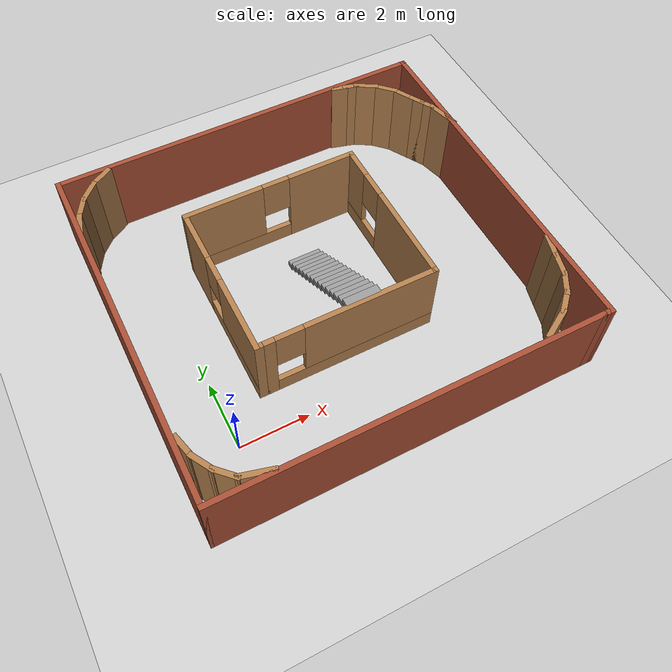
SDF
<sdf version="1.7">
 <world name="default">
  <light name="sun" type="directional">
   <pose>0 0 10 0 -0 0</pose>
   <diffuse>0.8 0.8 0.8 1</diffuse>
   <specular>0.2 0.2 0.2 1</specular>
   <attenuation>
    <range>1000</range>
    <constant>0.9</constant>
    <linear>0.01</linear>
    <quadratic>0.001</quadratic>
   </attenuation>
   <direction>-0.5 0.1 -0.9</direction>
   <spot><inner_angle>0</inner_angle><outer_angle>0</outer_angle><falloff>0</falloff></spot>
  </light>
  <model name="ground_plane">
   <static>1</static>
   <link name="link">
    <collision name="collision">
     <geometry><plane><normal>0 0 1</normal><size>100 100</size></plane></geometry>
     <surface><friction><ode><mu>100</mu><mu2>50</mu2></ode></friction></surface>
    </collision>
    <visual name="visual">
     <cast_shadows>0</cast_shadows>
     <geometry><plane><normal>0 0 1</normal><size>100 100</size></plane></geometry>
     <material>
      <script><uri>file://media/materials/scripts/gazebo.material</uri><name>Gazebo/Grey</name></script>
     </material>
    </visual>
   </link>
  </model>
  <gravity>0 0 -9.8</gravity>
  <magnetic_field>6e-06 2.3e-05 -4.2e-05</magnetic_field>
  <atmosphere type="adiabatic"/>
  <physics type="ode">
   <max_step_size>0.001</max_step_size>
   <real_time_factor>1</real_time_factor>
   <real_time_update_rate>1000</real_time_update_rate>
  </physics>
  <scene><ambient>0.4 0.4 0.4 1</ambient><background>0.7 0.7 0.7 1</background><shadows>1</shadows></scene>
  <spherical_coordinates>
   <surface_model>EARTH_WGS84</surface_model>
   <latitude_deg>0</latitude_deg>
   <longitude_deg>0</longitude_deg>
   <elevation>0</elevation>
   <heading_deg>0</heading_deg>
  </spherical_coordinates>
  <model name="Untitled">
   <model name="fastrlap2">
    <pose>3e-06 5e-06 0 0 -0 0</pose>
    <link name="Stairs_0">
     <visual name="Stairs_0_Visual_0">
      <pose>0.192844 1.34287 0.083333 0 -0 0</pose>
      <geometry><box><size>1 0.233333 0.166667</size></box></geometry>
      <material>
       <script><uri>file://media/materials/scripts/gazebo.material</uri><name>Gazebo/Grey</name></script>
       <ambient>1 1 1 1</ambient>
      </material>
      <meta><layer>0</layer></meta>
     </visual>
     <collision name="Stairs_0_Collision_0">
      <geometry><box><size>1 0.233333 0.166667</size></box></geometry>
      <pose>0.192844 1.34287 0.083333 0 -0 0</pose>
     </collision>
     <visual name="Stairs_0_Visual_1">
      <pose>0.192844 1.10954 0.25 0 -0 0</pose>
      <geometry><box><size>1 0.233333 0.166667</size></box></geometry>
      <material>
       <script><uri>file://media/materials/scripts/gazebo.material</uri><name>Gazebo/Grey</name></script>
       <ambient>1 1 1 1</ambient>
      </material>
      <meta><layer>0</layer></meta>
     </visual>
     <collision name="Stairs_0_Collision_1">
      <geometry><box><size>1 0.233333 0.166667</size></box></geometry>
      <pose>0.192844 1.10954 0.25 0 -0 0</pose>
     </collision>
     <visual name="Stairs_0_Visual_2">
      <pose>0.192844 0.876204 0.416667 0 -0 0</pose>
      <geometry><box><size>1 0.233333 0.166667</size></box></geometry>
      <material>
       <script><uri>file://media/materials/scripts/gazebo.material</uri><name>Gazebo/Grey</name></script>
       <ambient>1 1 1 1</ambient>
      </material>
      <meta><layer>0</layer></meta>
     </visual>
     <collision name="Stairs_0_Collision_2">
      <geometry><box><size>1 0.233333 0.166667</size></box></geometry>
      <pose>0.192844 0.876204 0.416667 0 -0 0</pose>
     </collision>
     <visual name="Stairs_0_Visual_3">
      <pose>0.192844 0.642871 0.583333 0 -0 0</pose>
      <geometry><box><size>1 0.233333 0.166667</size></box></geometry>
      <material>
       <script><uri>file://media/materials/scripts/gazebo.material</uri><name>Gazebo/Grey</name></script>
       <ambient>1 1 1 1</ambient>
      </material>
      <meta><layer>0</layer></meta>
     </visual>
     <collision name="Stairs_0_Collision_3">
      <geometry><box><size>1 0.233333 0.166667</size></box></geometry>
      <pose>0.192844 0.642871 0.583333 0 -0 0</pose>
     </collision>
     <visual name="Stairs_0_Visual_4">
      <pose>0.192844 0.409537 0.75 0 -0 0</pose>
      <geometry><box><size>1 0.233333 0.166667</size></box></geometry>
      <material>
       <script><uri>file://media/materials/scripts/gazebo.material</uri><name>Gazebo/Grey</name></script>
       <ambient>1 1 1 1</ambient>
      </material>
      <meta><layer>0</layer></meta>
     </visual>
     <collision name="Stairs_0_Collision_4">
      <geometry><box><size>1 0.233333 0.166667</size></box></geometry>
      <pose>0.192844 0.409537 0.75 0 -0 0</pose>
     </collision>
     <visual name="Stairs_0_Visual_5">
      <pose>0.192844 0.176204 0.916667 0 -0 0</pose>
      <geometry><box><size>1 0.233333 0.166667</size></box></geometry>
      <material>
       <script><uri>file://media/materials/scripts/gazebo.material</uri><name>Gazebo/Grey</name></script>
       <ambient>1 1 1 1</ambient>
      </material>
      <meta><layer>0</layer></meta>
     </visual>
     <collision name="Stairs_0_Collision_5">
      <geometry><box><size>1 0.233333 0.166667</size></box></geometry>
      <pose>0.192844 0.176204 0.916667 0 -0 0</pose>
     </collision>
     <visual name="Stairs_0_Visual_6">
      <pose>0.192844 -0.057129 1.08333 0 -0 0</pose>
      <geometry><box><size>1 0.233333 0.166667</size></box></geometry>
      <material>
       <script><uri>file://media/materials/scripts/gazebo.material</uri><name>Gazebo/Grey</name></script>
       <ambient>1 1 1 1</ambient>
      </material>
      <meta><layer>0</layer></meta>
     </visual>
     <collision name="Stairs_0_Collision_6">
      <geometry><box><size>1 0.233333 0.166667</size></box></geometry>
      <pose>0.192844 -0.057129 1.08333 0 -0 0</pose>
     </collision>
     <visual name="Stairs_0_Visual_7">
      <pose>0.192844 -0.290463 1.25 0 -0 0</pose>
      <geometry><box><size>1 0.233333 0.166667</size></box></geometry>
      <material>
       <script><uri>file://media/materials/scripts/gazebo.material</uri><name>Gazebo/Grey</name></script>
       <ambient>1 1 1 1</ambient>
      </material>
      <meta><layer>0</layer></meta>
     </visual>
     <collision name="Stairs_0_Collision_7">
      <geometry><box><size>1 0.233333 0.166667</size></box></geometry>
      <pose>0.192844 -0.290463 1.25 0 -0 0</pose>
     </collision>
     <visual name="Stairs_0_Visual_8">
      <pose>0.192844 -0.523796 1.41667 0 -0 0</pose>
      <geometry><box><size>1 0.233333 0.166667</size></box></geometry>
      <material>
       <script><uri>file://media/materials/scripts/gazebo.material</uri><name>Gazebo/Grey</name></script>
       <ambient>1 1 1 1</ambient>
      </material>
      <meta><layer>0</layer></meta>
     </visual>
     <collision name="Stairs_0_Collision_8">
      <geometry><box><size>1 0.233333 0.166667</size></box></geometry>
      <pose>0.192844 -0.523796 1.41667 0 -0 0</pose>
     </collision>
     <visual name="Stairs_0_Visual_9">
      <pose>0.192844 -0.757129 1.58333 0 -0 0</pose>
      <geometry><box><size>1 0.233333 0.166667</size></box></geometry>
      <material>
       <script><uri>file://media/materials/scripts/gazebo.material</uri><name>Gazebo/Grey</name></script>
       <ambient>1 1 1 1</ambient>
      </material>
      <meta><layer>0</layer></meta>
     </visual>
     <collision name="Stairs_0_Collision_9">
      <geometry><box><size>1 0.233333 0.166667</size></box></geometry>
      <pose>0.192844 -0.757129 1.58333 0 -0 0</pose>
     </collision>
     <visual name="Stairs_0_Visual_10">
      <pose>0.192844 -0.990463 1.75 0 -0 0</pose>
      <geometry><box><size>1 0.233333 0.166667</size></box></geometry>
      <material>
       <script><uri>file://media/materials/scripts/gazebo.material</uri><name>Gazebo/Grey</name></script>
       <ambient>1 1 1 1</ambient>
      </material>
      <meta><layer>0</layer></meta>
     </visual>
     <collision name="Stairs_0_Collision_10">
      <geometry><box><size>1 0.233333 0.166667</size></box></geometry>
      <pose>0.192844 -0.990463 1.75 0 -0 0</pose>
     </collision>
     <visual name="Stairs_0_Visual_11">
      <pose>0.192844 -1.2238 1.91667 0 -0 0</pose>
      <geometry><box><size>1 0.233333 0.166667</size></box></geometry>
      <material>
       <script><uri>file://media/materials/scripts/gazebo.material</uri><name>Gazebo/Grey</name></script>
       <ambient>1 1 1 1</ambient>
      </material>
      <meta><layer>0</layer></meta>
     </visual>
     <collision name="Stairs_0_Collision_11">
      <geometry><box><size>1 0.233333 0.166667</size></box></geometry>
      <pose>0.192844 -1.2238 1.91667 0 -0 0</pose>
     </collision>
     <visual name="Stairs_0_Visual_12">
      <pose>0.192844 -1.45713 2.08333 0 -0 0</pose>
      <geometry><box><size>1 0.233333 0.166667</size></box></geometry>
      <material>
       <script><uri>file://media/materials/scripts/gazebo.material</uri><name>Gazebo/Grey</name></script>
       <ambient>1 1 1 1</ambient>
      </material>
      <meta><layer>0</layer></meta>
     </visual>
     <collision name="Stairs_0_Collision_12">
      <geometry><box><size>1 0.233333 0.166667</size></box></geometry>
      <pose>0.192844 -1.45713 2.08333 0 -0 0</pose>
     </collision>
     <visual name="Stairs_0_Visual_13">
      <pose>0.192844 -1.69046 2.25 0 -0 0</pose>
      <geometry><box><size>1 0.233333 0.166667</size></box></geometry>
      <material>
       <script><uri>file://media/materials/scripts/gazebo.material</uri><name>Gazebo/Grey</name></script>
       <ambient>1 1 1 1</ambient>
      </material>
      <meta><layer>0</layer></meta>
     </visual>
     <collision name="Stairs_0_Collision_13">
      <geometry><box><size>1 0.233333 0.166667</size></box></geometry>
      <pose>0.192844 -1.69046 2.25 0 -0 0</pose>
     </collision>
     <visual name="Stairs_0_Visual_14">
      <pose>0.192844 -1.9238 2.41667 0 -0 0</pose>
      <geometry><box><size>1 0.233333 0.166667</size></box></geometry>
      <material>
       <script><uri>file://media/materials/scripts/gazebo.material</uri><name>Gazebo/Grey</name></script>
       <ambient>1 1 1 1</ambient>
      </material>
      <meta><layer>0</layer></meta>
     </visual>
     <collision name="Stairs_0_Collision_14">
      <geometry><box><size>1 0.233333 0.166667</size></box></geometry>
      <pose>0.192844 -1.9238 2.41667 0 -0 0</pose>
     </collision>
    </link>
    <link name="Wall_1">
     <collision name="Wall_1_Collision">
      <geometry><box><size>11 0.15 2.5</size></box></geometry>
      <pose>0 0 1.25 0 -0 0</pose>
     </collision>
     <visual name="Wall_1_Visual">
      <pose>0 0 1.25 0 -0 0</pose>
      <geometry><box><size>11 0.15 2.5</size></box></geometry>
      <material>
       <script><uri>file://media/materials/scripts/gazebo.material</uri><name>Gazebo/Bricks</name></script>
       <ambient>1 1 1 1</ambient>
      </material>
      <meta><layer>0</layer></meta>
     </visual>
     <pose>-0.125 -5.175 0 0 -0 0</pose>
    </link>
    <link name="Wall_12">
     <collision name="Wall_12_Collision">
      <geometry><box><size>10.5 0.15 2.5</size></box></geometry>
      <pose>0 0 1.25 0 -0 0</pose>
     </collision>
     <visual name="Wall_12_Visual">
      <pose>0 0 1.25 0 -0 0</pose>
      <geometry><box><size>10.5 0.15 2.5</size></box></geometry>
      <material>
       <script><uri>file://media/materials/scripts/gazebo.material</uri><name>Gazebo/Bricks</name></script>
       <ambient>1 1 1 1</ambient>
      </material>
      <meta><layer>0</layer></meta>
     </visual>
     <pose>-5.55 0 0 0 -0 1.5708</pose>
    </link>
    <link name="Wall_13">
     <collision name="Wall_13_Collision">
      <geometry><box><size>11.25 0.15 2.5</size></box></geometry>
      <pose>0 0 1.25 0 -0 0</pose>
     </collision>
     <visual name="Wall_13_Visual">
      <pose>0 0 1.25 0 -0 0</pose>
      <geometry><box><size>11.25 0.15 2.5</size></box></geometry>
      <material>
       <script><uri>file://media/materials/scripts/gazebo.material</uri><name>Gazebo/Bricks</name></script>
       <ambient>1 1 1 1</ambient>
      </material>
      <meta><layer>0</layer></meta>
     </visual>
     <pose>-0 5.175 0 0 -0 0</pose>
    </link>
    <link name="Wall_14">
     <collision name="Wall_14_Collision">
      <geometry><box><size>10.5 0.15 2.5</size></box></geometry>
      <pose>0 0 1.25 0 -0 0</pose>
     </collision>
     <visual name="Wall_14_Visual">
      <pose>0 0 1.25 0 -0 0</pose>
      <geometry><box><size>10.5 0.15 2.5</size></box></geometry>
      <material>
       <script><uri>file://media/materials/scripts/gazebo.material</uri><name>Gazebo/Bricks</name></script>
       <ambient>1 1 1 1</ambient>
      </material>
      <meta><layer>0</layer></meta>
     </visual>
     <pose>5.55 0 0 0 -0 -1.5708</pose>
    </link>
    <link name="Wall_15">
     <collision name="Wall_15_Collision">
      <geometry><box><size>0.4 0.15 2.5</size></box></geometry>
      <pose>0 0 1.25 0 -0 0</pose>
     </collision>
     <visual name="Wall_15_Visual">
      <pose>0 0 1.25 0 -0 0</pose>
      <geometry><box><size>0.4 0.15 2.5</size></box></geometry>
      <material>
       <script><uri>file://media/materials/scripts/gazebo.material</uri><name>Gazebo/Bricks</name></script>
       <ambient>1 1 1 1</ambient>
      </material>
      <meta><layer>0</layer></meta>
     </visual>
     <pose>5.425 -5.175 0 0 -0 -3.14159</pose>
    </link>
    <link name="Wall_4">
     <pose>-0.154642 -2.08647 0 0 -0 0</pose>
     <visual name="Wall_4_Visual_0">
      <pose>-2.34027 0 1.25 0 -0 0</pose>
      <geometry><box><size>0.31947 0.15 2.5</size></box></geometry>
      <material>
       <script><uri>file://media/materials/scripts/gazebo.material</uri><name>Gazebo/Wood</name></script>
       <ambient>1 1 1 1</ambient>
      </material>
      <meta><layer>0</layer></meta>
     </visual>
     <collision name="Wall_4_Collision_0">
      <geometry><box><size>0.31947 0.15 2.5</size></box></geometry>
      <pose>-2.34027 0 1.25 0 -0 0</pose>
     </collision>
     <visual name="Wall_4_Visual_1">
      <pose>0.159735 0 0.25 0 -0 0</pose>
      <geometry><box><size>4.68053 0.15 0.5</size></box></geometry>
      <material>
       <script><uri>file://media/materials/scripts/gazebo.material</uri><name>Gazebo/Wood</name></script>
       <ambient>1 1 1 1</ambient>
      </material>
      <meta><layer>0</layer></meta>
     </visual>
     <collision name="Wall_4_Collision_1">
      <geometry><box><size>4.68053 0.15 0.5</size></box></geometry>
      <pose>0.159735 0 0.25 0 -0 0</pose>
     </collision>
     <visual name="Wall_4_Visual_2">
      <pose>0.559735 0 1.5 0 -0 0</pose>
      <geometry><box><size>3.88053 0.15 2</size></box></geometry>
      <material>
       <script><uri>file://media/materials/scripts/gazebo.material</uri><name>Gazebo/Wood</name></script>
       <ambient>1 1 1 1</ambient>
      </material>
      <meta><layer>0</layer></meta>
     </visual>
     <collision name="Wall_4_Collision_2">
      <geometry><box><size>3.88053 0.15 2</size></box></geometry>
      <pose>0.559735 0 1.5 0 -0 0</pose>
     </collision>
     <visual name="Wall_4_Visual_3">
      <pose>-1.78053 0 1.9 0 -0 0</pose>
      <geometry><box><size>0.8 0.15 1.2</size></box></geometry>
      <material>
       <script><uri>file://media/materials/scripts/gazebo.material</uri><name>Gazebo/Wood</name></script>
       <ambient>1 1 1 1</ambient>
      </material>
      <meta><layer>0</layer></meta>
     </visual>
     <collision name="Wall_4_Collision_3">
      <geometry><box><size>0.8 0.15 1.2</size></box></geometry>
      <pose>-1.78053 0 1.9 0 -0 0</pose>
     </collision>
    </link>
    <link name="Wall_6">
     <pose>2.27036 0.213535 0 0 -0 1.5708</pose>
     <visual name="Wall_6_Visual_0">
      <pose>-0.887754 0 1.25 0 -0 0</pose>
      <geometry><box><size>2.97449 0.15 2.5</size></box></geometry>
      <material>
       <script><uri>file://media/materials/scripts/gazebo.material</uri><name>Gazebo/Wood</name></script>
       <ambient>1 1 1 1</ambient>
      </material>
      <meta><layer>0</layer></meta>
     </visual>
     <collision name="Wall_6_Collision_0">
      <geometry><box><size>2.97449 0.15 2.5</size></box></geometry>
      <pose>-0.887754 0 1.25 0 -0 0</pose>
     </collision>
     <visual name="Wall_6_Visual_1">
      <pose>1.48725 0 0.25 0 -0 0</pose>
      <geometry><box><size>1.77551 0.15 0.5</size></box></geometry>
      <material>
       <script><uri>file://media/materials/scripts/gazebo.material</uri><name>Gazebo/Wood</name></script>
       <ambient>1 1 1 1</ambient>
      </material>
      <meta><layer>0</layer></meta>
     </visual>
     <collision name="Wall_6_Collision_1">
      <geometry><box><size>1.77551 0.15 0.5</size></box></geometry>
      <pose>1.48725 0 0.25 0 -0 0</pose>
     </collision>
     <visual name="Wall_6_Visual_2">
      <pose>1.88725 0 1.5 0 -0 0</pose>
      <geometry><box><size>0.975509 0.15 2</size></box></geometry>
      <material>
       <script><uri>file://media/materials/scripts/gazebo.material</uri><name>Gazebo/Wood</name></script>
       <ambient>1 1 1 1</ambient>
      </material>
      <meta><layer>0</layer></meta>
     </visual>
     <collision name="Wall_6_Collision_2">
      <geometry><box><size>0.975509 0.15 2</size></box></geometry>
      <pose>1.88725 0 1.5 0 -0 0</pose>
     </collision>
     <visual name="Wall_6_Visual_3">
      <pose>0.999491 0 1.9 0 -0 0</pose>
      <geometry><box><size>0.8 0.15 1.2</size></box></geometry>
      <material>
       <script><uri>file://media/materials/scripts/gazebo.material</uri><name>Gazebo/Wood</name></script>
       <ambient>1 1 1 1</ambient>
      </material>
      <meta><layer>0</layer></meta>
     </visual>
     <collision name="Wall_6_Collision_3">
      <geometry><box><size>0.8 0.15 1.2</size></box></geometry>
      <pose>0.999491 0 1.9 0 -0 0</pose>
     </collision>
    </link>
    <link name="Wall_7">
     <pose>-0.279642 2.51354 0 0 -0 3.14159</pose>
     <visual name="Wall_7_Visual_0">
      <pose>-1.58683 0 1.25 0 -0 0</pose>
      <geometry><box><size>2.07634 0.15 2.5</size></box></geometry>
      <material>
       <script><uri>file://media/materials/scripts/gazebo.material</uri><name>Gazebo/Wood</name></script>
       <ambient>1 1 1 1</ambient>
      </material>
      <meta><layer>0</layer></meta>
     </visual>
     <collision name="Wall_7_Collision_0">
      <geometry><box><size>2.07634 0.15 2.5</size></box></geometry>
      <pose>-1.58683 0 1.25 0 -0 0</pose>
     </collision>
     <visual name="Wall_7_Visual_1">
      <pose>1.03817 0 0.25 0 -0 0</pose>
      <geometry><box><size>3.17366 0.15 0.5</size></box></geometry>
      <material>
       <script><uri>file://media/materials/scripts/gazebo.material</uri><name>Gazebo/Wood</name></script>
       <ambient>1 1 1 1</ambient>
      </material>
      <meta><layer>0</layer></meta>
     </visual>
     <collision name="Wall_7_Collision_1">
      <geometry><box><size>3.17366 0.15 0.5</size></box></geometry>
      <pose>1.03817 0 0.25 0 -0 0</pose>
     </collision>
     <visual name="Wall_7_Visual_2">
      <pose>1.43817 0 1.5 0 -0 0</pose>
      <geometry><box><size>2.37366 0.15 2</size></box></geometry>
      <material>
       <script><uri>file://media/materials/scripts/gazebo.material</uri><name>Gazebo/Wood</name></script>
       <ambient>1 1 1 1</ambient>
      </material>
      <meta><layer>0</layer></meta>
     </visual>
     <collision name="Wall_7_Collision_2">
      <geometry><box><size>2.37366 0.15 2</size></box></geometry>
      <pose>1.43817 0 1.5 0 -0 0</pose>
     </collision>
     <visual name="Wall_7_Visual_3">
      <pose>-0.148657 0 1.9 0 -0 0</pose>
      <geometry><box><size>0.8 0.15 1.2</size></box></geometry>
      <material>
       <script><uri>file://media/materials/scripts/gazebo.material</uri><name>Gazebo/Wood</name></script>
       <ambient>1 1 1 1</ambient>
      </material>
      <meta><layer>0</layer></meta>
     </visual>
     <collision name="Wall_7_Collision_3">
      <geometry><box><size>0.8 0.15 1.2</size></box></geometry>
      <pose>-0.148657 0 1.9 0 -0 0</pose>
     </collision>
    </link>
    <link name="Wall_8">
     <pose>-2.82964 0.213535 0 0 -0 -1.5708</pose>
     <visual name="Wall_8_Visual_0">
      <pose>-1.56342 0 1.25 0 -0 0</pose>
      <geometry><box><size>1.62316 0.15 2.5</size></box></geometry>
      <material>
       <script><uri>file://media/materials/scripts/gazebo.material</uri><name>Gazebo/Wood</name></script>
       <ambient>1 1 1 1</ambient>
      </material>
      <meta><layer>0</layer></meta>
     </visual>
     <collision name="Wall_8_Collision_0">
      <geometry><box><size>1.62316 0.15 2.5</size></box></geometry>
      <pose>-1.56342 0 1.25 0 -0 0</pose>
     </collision>
     <visual name="Wall_8_Visual_1">
      <pose>0.811583 0 0.25 0 -0 0</pose>
      <geometry><box><size>3.12683 0.15 0.5</size></box></geometry>
      <material>
       <script><uri>file://media/materials/scripts/gazebo.material</uri><name>Gazebo/Wood</name></script>
       <ambient>1 1 1 1</ambient>
      </material>
      <meta><layer>0</layer></meta>
     </visual>
     <collision name="Wall_8_Collision_1">
      <geometry><box><size>3.12683 0.15 0.5</size></box></geometry>
      <pose>0.811583 0 0.25 0 -0 0</pose>
     </collision>
     <visual name="Wall_8_Visual_2">
      <pose>1.21158 0 1.5 0 -0 0</pose>
      <geometry><box><size>2.32683 0.15 2</size></box></geometry>
      <material>
       <script><uri>file://media/materials/scripts/gazebo.material</uri><name>Gazebo/Wood</name></script>
       <ambient>1 1 1 1</ambient>
      </material>
      <meta><layer>0</layer></meta>
     </visual>
     <collision name="Wall_8_Collision_2">
      <geometry><box><size>2.32683 0.15 2</size></box></geometry>
      <pose>1.21158 0 1.5 0 -0 0</pose>
     </collision>
     <visual name="Wall_8_Visual_3">
      <pose>-0.351835 0 1.9 0 -0 0</pose>
      <geometry><box><size>0.8 0.15 1.2</size></box></geometry>
      <material>
       <script><uri>file://media/materials/scripts/gazebo.material</uri><name>Gazebo/Wood</name></script>
       <ambient>1 1 1 1</ambient>
      </material>
      <meta><layer>0</layer></meta>
     </visual>
     <collision name="Wall_8_Collision_3">
      <geometry><box><size>0.8 0.15 1.2</size></box></geometry>
      <pose>-0.351835 0 1.9 0 -0 0</pose>
     </collision>
    </link>
    <link name="Wall_9">
     <collision name="Wall_9_Collision">
      <geometry><box><size>0.4 0.15 2.5</size></box></geometry>
      <pose>0 0 1.25 0 -0 0</pose>
     </collision>
     <visual name="Wall_9_Visual">
      <pose>0 0 1.25 0 -0 0</pose>
      <geometry><box><size>0.4 0.15 2.5</size></box></geometry>
      <material>
       <script><uri>file://media/materials/scripts/gazebo.material</uri><name>Gazebo/Wood</name></script>
       <ambient>1 1 1 1</ambient>
      </material>
      <meta><layer>0</layer></meta>
     </visual>
     <pose>-2.70464 -2.08647 0 0 -0 0</pose>
    </link>
    <static>1</static>
   </model>
   <static>0</static>
   <pose>3.96553 3.19573 0 0 -0 0</pose>
  </model>
  <model name="fastrlap3">
   <pose>3.98545 3.19393 0 0 -0 0</pose>
   <link name="Wall_0">
    <collision name="Wall_0_Collision">
     <geometry><box><size>0.75 0.15 2.5</size></box></geometry>
     <pose>0 0 1.25 0 -0 0</pose>
    </collision>
    <visual name="Wall_0_Visual">
     <pose>0 0 1.25 0 -0 0</pose>
     <geometry><box><size>0.75 0.15 2.5</size></box></geometry>
     <material>
      <script><uri>file://media/materials/scripts/gazebo.material</uri><name>Gazebo/Wood</name></script>
      <ambient>1 1 1 1</ambient>
     </material>
     <meta><layer>0</layer></meta>
    </visual>
    <pose>-5.39217 -3.67164 0 0 -0 -1.309</pose>
   </link>
   <link name="Wall_10">
    <collision name="Wall_10_Collision">
     <geometry><box><size>0.75 0.15 2.5</size></box></geometry>
     <pose>0 0 1.25 0 -0 0</pose>
    </collision>
    <visual name="Wall_10_Visual">
     <pose>0 0 1.25 0 -0 0</pose>
     <geometry><box><size>0.75 0.15 2.5</size></box></geometry>
     <material>
      <script><uri>file://media/materials/scripts/gazebo.material</uri><name>Gazebo/Wood</name></script>
      <ambient>1 1 1 1</ambient>
     </material>
     <meta><layer>0</layer></meta>
    </visual>
    <pose>4.64755 -4.43123 0 0 -0 0.785398</pose>
   </link>
   <link name="Wall_13">
    <collision name="Wall_13_Collision">
     <geometry><box><size>0.75 0.15 2.5</size></box></geometry>
     <pose>0 0 1.25 0 -0 0</pose>
    </collision>
    <visual name="Wall_13_Visual">
     <pose>0 0 1.25 0 -0 0</pose>
     <geometry><box><size>0.75 0.15 2.5</size></box></geometry>
     <material>
      <script><uri>file://media/materials/scripts/gazebo.material</uri><name>Gazebo/Wood</name></script>
      <ambient>1 1 1 1</ambient>
     </material>
     <meta><layer>0</layer></meta>
    </visual>
    <pose>5.00968 -3.95929 0 0 -0 1.0472</pose>
   </link>
   <link name="Wall_16">
    <collision name="Wall_16_Collision">
     <geometry><box><size>1 0.15 2.5</size></box></geometry>
     <pose>0 0 1.25 0 -0 0</pose>
    </collision>
    <visual name="Wall_16_Visual">
     <pose>0 0 1.25 0 -0 0</pose>
     <geometry><box><size>1 0.15 2.5</size></box></geometry>
     <material>
      <script><uri>file://media/materials/scripts/gazebo.material</uri><name>Gazebo/Wood</name></script>
      <ambient>1 1 1 1</ambient>
     </material>
     <meta><layer>0</layer></meta>
    </visual>
    <pose>4.06735 -4.85587 0 0 -0 -2.61799</pose>
   </link>
   <link name="Wall_18">
    <collision name="Wall_18_Collision">
     <geometry><box><size>0.75 0.15 2.5</size></box></geometry>
     <pose>0 0 1.25 0 -0 0</pose>
    </collision>
    <visual name="Wall_18_Visual">
     <pose>0 0 1.25 0 -0 0</pose>
     <geometry><box><size>0.75 0.15 2.5</size></box></geometry>
     <material>
      <script><uri>file://media/materials/scripts/gazebo.material</uri><name>Gazebo/Wood</name></script>
      <ambient>1 1 1 1</ambient>
     </material>
     <meta><layer>0</layer></meta>
    </visual>
    <pose>5.23732 -3.40971 0 0 -0 1.309</pose>
   </link>
   <link name="Wall_19">
    <collision name="Wall_19_Collision">
     <geometry><box><size>0.75 0.15 2.5</size></box></geometry>
     <pose>0 0 1.25 0 -0 0</pose>
    </collision>
    <visual name="Wall_19_Visual">
     <pose>0 0 1.25 0 -0 0</pose>
     <geometry><box><size>0.75 0.15 2.5</size></box></geometry>
     <material>
      <script><uri>file://media/materials/scripts/gazebo.material</uri><name>Gazebo/Wood</name></script>
      <ambient>1 1 1 1</ambient>
     </material>
     <meta><layer>0</layer></meta>
    </visual>
    <pose>5.39262 -2.83015 0 0 -0 1.309</pose>
   </link>
   <link name="Wall_2">
    <collision name="Wall_2_Collision">
     <geometry><box><size>0.75 0.15 2.5</size></box></geometry>
     <pose>0 0 1.25 0 -0 0</pose>
    </collision>
    <visual name="Wall_2_Visual">
     <pose>0 0 1.25 0 -0 0</pose>
     <geometry><box><size>0.75 0.15 2.5</size></box></geometry>
     <material>
      <script><uri>file://media/materials/scripts/gazebo.material</uri><name>Gazebo/Wood</name></script>
      <ambient>1 1 1 1</ambient>
     </material>
     <meta><layer>0</layer></meta>
    </visual>
    <pose>-5.16453 -4.22123 0 0 -0 -1.0472</pose>
   </link>
   <link name="Wall_21">
    <collision name="Wall_21_Collision">
     <geometry><box><size>0.75 0.15 2.5</size></box></geometry>
     <pose>0 0 1.25 0 -0 0</pose>
    </collision>
    <visual name="Wall_21_Visual">
     <pose>0 0 1.25 0 -0 0</pose>
     <geometry><box><size>0.75 0.15 2.5</size></box></geometry>
     <material>
      <script><uri>file://media/materials/scripts/gazebo.material</uri><name>Gazebo/Wood</name></script>
      <ambient>1 1 1 1</ambient>
     </material>
     <meta><layer>0</layer></meta>
    </visual>
    <pose>-5.47407 3.55167 0 0 -0 1.309</pose>
   </link>
   <link name="Wall_23">
    <collision name="Wall_23_Collision">
     <geometry><box><size>0.75 0.15 2.5</size></box></geometry>
     <pose>0 0 1.25 0 -0 0</pose>
    </collision>
    <visual name="Wall_23_Visual">
     <pose>0 0 1.25 0 -0 0</pose>
     <geometry><box><size>0.75 0.15 2.5</size></box></geometry>
     <material>
      <script><uri>file://media/materials/scripts/gazebo.material</uri><name>Gazebo/Wood</name></script>
      <ambient>1 1 1 1</ambient>
     </material>
     <meta><layer>0</layer></meta>
    </visual>
    <pose>-5.24643 4.10125 0 0 -0 1.0472</pose>
   </link>
   <link name="Wall_24">
    <collision name="Wall_24_Collision">
     <geometry><box><size>0.75 0.15 2.5</size></box></geometry>
     <pose>0 0 1.25 0 -0 0</pose>
    </collision>
    <visual name="Wall_24_Visual">
     <pose>0 0 1.25 0 -0 0</pose>
     <geometry><box><size>0.75 0.15 2.5</size></box></geometry>
     <material>
      <script><uri>file://media/materials/scripts/gazebo.material</uri><name>Gazebo/Wood</name></script>
      <ambient>1 1 1 1</ambient>
     </material>
     <meta><layer>0</layer></meta>
    </visual>
    <pose>-4.88429 4.57319 0 0 -0 0.785398</pose>
   </link>
   <link name="Wall_25">
    <collision name="Wall_25_Collision">
     <geometry><box><size>0.75 0.15 2.5</size></box></geometry>
     <pose>0 0 1.25 0 -0 0</pose>
    </collision>
    <visual name="Wall_25_Visual">
     <pose>0 0 1.25 0 -0 0</pose>
     <geometry><box><size>0.75 0.15 2.5</size></box></geometry>
     <material>
      <script><uri>file://media/materials/scripts/gazebo.material</uri><name>Gazebo/Wood</name></script>
      <ambient>1 1 1 1</ambient>
     </material>
     <meta><layer>0</layer></meta>
    </visual>
    <pose>-4.41235 4.93532 0 0 -0 0.523599</pose>
   </link>
   <link name="Wall_29">
    <collision name="Wall_29_Collision">
     <geometry><box><size>0.5 0.15 2.5</size></box></geometry>
     <pose>0 0 1.25 0 -0 0</pose>
    </collision>
    <visual name="Wall_29_Visual">
     <pose>0 0 1.25 0 -0 0</pose>
     <geometry><box><size>0.5 0.15 2.5</size></box></geometry>
     <material>
      <script><uri>file://media/materials/scripts/gazebo.material</uri><name>Gazebo/Wood</name></script>
      <ambient>1 1 1 1</ambient>
     </material>
     <meta><layer>0</layer></meta>
    </visual>
    <pose>3.23073 5.08 0 0 -0 -0.261799</pose>
   </link>
   <link name="Wall_31">
    <collision name="Wall_31_Collision">
     <geometry><box><size>0.5 0.15 2.5</size></box></geometry>
     <pose>0 0 1.25 0 -0 0</pose>
    </collision>
    <visual name="Wall_31_Visual">
     <pose>0 0 1.25 0 -0 0</pose>
     <geometry><box><size>0.5 0.15 2.5</size></box></geometry>
     <material>
      <script><uri>file://media/materials/scripts/gazebo.material</uri><name>Gazebo/Wood</name></script>
      <ambient>1 1 1 1</ambient>
     </material>
     <meta><layer>0</layer></meta>
    </visual>
    <pose>3.56881 4.98942 0 0 -0 -0.261799</pose>
   </link>
   <link name="Wall_32">
    <collision name="Wall_32_Collision">
     <geometry><box><size>0.75 0.15 2.5</size></box></geometry>
     <pose>0 0 1.25 0 -0 0</pose>
    </collision>
    <visual name="Wall_32_Visual">
     <pose>0 0 1.25 0 -0 0</pose>
     <geometry><box><size>0.75 0.15 2.5</size></box></geometry>
     <material>
      <script><uri>file://media/materials/scripts/gazebo.material</uri><name>Gazebo/Wood</name></script>
      <ambient>1 1 1 1</ambient>
     </material>
     <meta><layer>0</layer></meta>
    </visual>
    <pose>3.99765 4.79412 0 0 -0 -0.523599</pose>
   </link>
   <link name="Wall_33">
    <collision name="Wall_33_Collision">
     <geometry><box><size>0.75 0.15 2.5</size></box></geometry>
     <pose>0 0 1.25 0 -0 0</pose>
    </collision>
    <visual name="Wall_33_Visual">
     <pose>0 0 1.25 0 -0 0</pose>
     <geometry><box><size>0.75 0.15 2.5</size></box></geometry>
     <material>
      <script><uri>file://media/materials/scripts/gazebo.material</uri><name>Gazebo/Wood</name></script>
      <ambient>1 1 1 1</ambient>
     </material>
     <meta><layer>0</layer></meta>
    </visual>
    <pose>4.46959 4.43199 0 0 -0 -0.785398</pose>
   </link>
   <link name="Wall_34">
    <collision name="Wall_34_Collision">
     <geometry><box><size>0.75 0.15 2.5</size></box></geometry>
     <pose>0 0 1.25 0 -0 0</pose>
    </collision>
    <visual name="Wall_34_Visual">
     <pose>0 0 1.25 0 -0 0</pose>
     <geometry><box><size>0.75 0.15 2.5</size></box></geometry>
     <material>
      <script><uri>file://media/materials/scripts/gazebo.material</uri><name>Gazebo/Wood</name></script>
      <ambient>1 1 1 1</ambient>
     </material>
     <meta><layer>0</layer></meta>
    </visual>
    <pose>4.83172 3.96005 0 0 -0 -1.0472</pose>
   </link>
   <link name="Wall_35">
    <collision name="Wall_35_Collision">
     <geometry><box><size>0.5 0.15 2.5</size></box></geometry>
     <pose>0 0 1.25 0 -0 0</pose>
    </collision>
    <visual name="Wall_35_Visual">
     <pose>0 0 1.25 0 -0 0</pose>
     <geometry><box><size>0.5 0.15 2.5</size></box></geometry>
     <material>
      <script><uri>file://media/materials/scripts/gazebo.material</uri><name>Gazebo/Wood</name></script>
      <ambient>1 1 1 1</ambient>
     </material>
     <meta><layer>0</layer></meta>
    </visual>
    <pose>5.06922 3.54869 0 0 -0 -1.0472</pose>
   </link>
   <link name="Wall_36">
    <collision name="Wall_36_Collision">
     <geometry><box><size>0.5 0.15 2.5</size></box></geometry>
     <pose>0 0 1.25 0 -0 0</pose>
    </collision>
    <visual name="Wall_36_Visual">
     <pose>0 0 1.25 0 -0 0</pose>
     <geometry><box><size>0.5 0.15 2.5</size></box></geometry>
     <material>
      <script><uri>file://media/materials/scripts/gazebo.material</uri><name>Gazebo/Wood</name></script>
      <ambient>1 1 1 1</ambient>
     </material>
     <meta><layer>0</layer></meta>
    </visual>
    <pose>5.24422 3.24558 0 0 -0 -1.0472</pose>
   </link>
   <link name="Wall_37">
    <collision name="Wall_37_Collision">
     <geometry><box><size>1 0.15 2.5</size></box></geometry>
     <pose>0 0 1.25 0 -0 0</pose>
    </collision>
    <visual name="Wall_37_Visual">
     <pose>0 0 1.25 0 -0 0</pose>
     <geometry><box><size>1 0.15 2.5</size></box></geometry>
     <material>
      <script><uri>file://media/materials/scripts/gazebo.material</uri><name>Gazebo/Wood</name></script>
      <ambient>1 1 1 1</ambient>
     </material>
     <meta><layer>0</layer></meta>
    </visual>
    <pose>5.44172 2.68351 0 0 -0 -1.309</pose>
   </link>
   <link name="Wall_4">
    <collision name="Wall_4_Collision">
     <geometry><box><size>0.75 0.15 2.5</size></box></geometry>
     <pose>0 0 1.25 0 -0 0</pose>
    </collision>
    <visual name="Wall_4_Visual">
     <pose>0 0 1.25 0 -0 0</pose>
     <geometry><box><size>0.75 0.15 2.5</size></box></geometry>
     <material>
      <script><uri>file://media/materials/scripts/gazebo.material</uri><name>Gazebo/Wood</name></script>
      <ambient>1 1 1 1</ambient>
     </material>
     <meta><layer>0</layer></meta>
    </visual>
    <pose>-4.80239 -4.69317 0 0 -0 -0.785398</pose>
   </link>
   <link name="Wall_5">
    <collision name="Wall_5_Collision">
     <geometry><box><size>1 0.15 2.5</size></box></geometry>
     <pose>0 0 1.25 0 -0 0</pose>
    </collision>
    <visual name="Wall_5_Visual">
     <pose>0 0 1.25 0 -0 0</pose>
     <geometry><box><size>1 0.15 2.5</size></box></geometry>
     <material>
      <script><uri>file://media/materials/scripts/gazebo.material</uri><name>Gazebo/Wood</name></script>
      <ambient>1 1 1 1</ambient>
     </material>
     <meta><layer>0</layer></meta>
    </visual>
    <pose>-4.17974 -5.0153 0 0 -0 -0.261799</pose>
   </link>
   <static>1</static>
  </model>
 </world>
</sdf>
